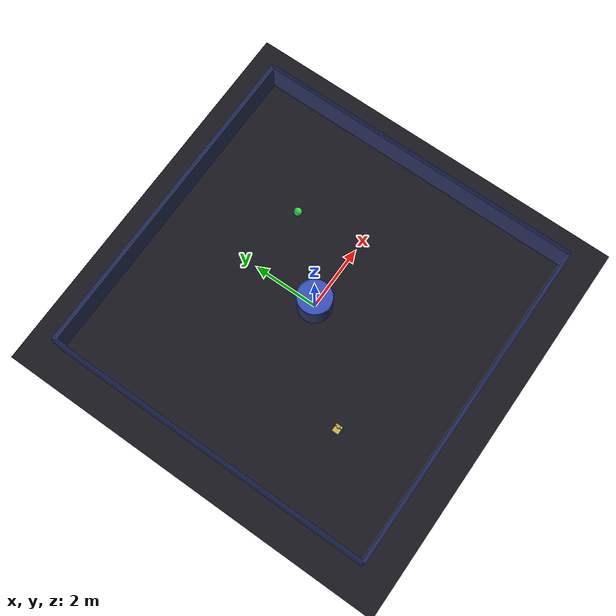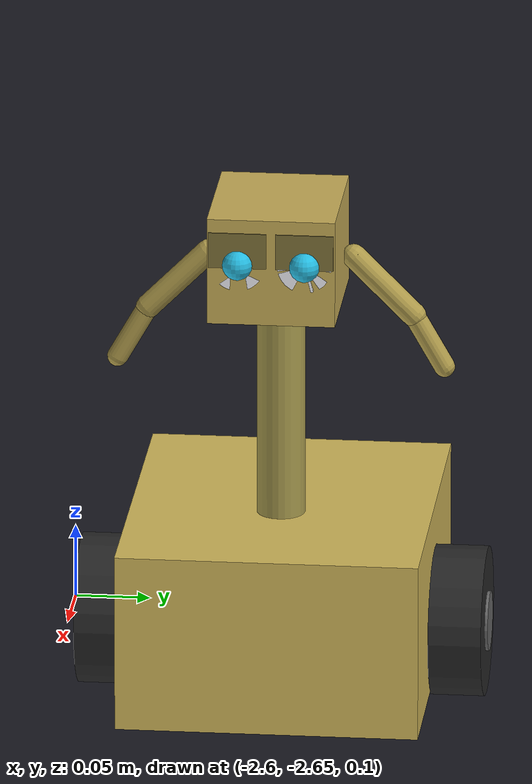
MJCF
<?xml version="1.0" encoding="utf-8"?>
<mujoco model="CARL Wall-E">

  <option timestep="0.005" gravity="0 0 -9.81" iterations="50" solver="Newton"
          integrator="RK4"/>

  <compiler angle="radian" coordinate="local" inertiafromgeom="true"/>

  <default>
    <geom contype="1" conaffinity="1" condim="3"
          friction="0.8 0.005 0.0001"
          solimp="0.99 0.999 0.001" solref="0.02 1"/>
    <joint damping="0.05" frictionloss="0.002"/>
  </default>

  <asset>
    <!-- Colours of CARL's soul -->
    <material name="floor_mat"     rgba="0.10 0.10 0.13 1.0" reflectance="0.12"/>
    <material name="wall_mat"      rgba="0.15 0.18 0.35 1.0" specular="0.3"/>
    <material name="wall_glow"     rgba="0.30 0.45 1.00 0.7" emission="0.5"/>

    <!-- Body materials -->
    <material name="chassis_mat"   rgba="0.82 0.72 0.35 1.0" specular="0.4"/>
    <material name="tread_mat"     rgba="0.15 0.15 0.15 1.0" specular="0.05"/>
    <material name="tread_hub_mat" rgba="0.40 0.40 0.40 1.0" specular="0.3"/>
    <material name="neck_mat"      rgba="0.65 0.60 0.30 1.0" specular="0.2"/>
    <material name="head_mat"      rgba="0.78 0.68 0.34 1.0" specular="0.5"/>
    <material name="eye_white_mat" rgba="0.95 0.95 0.98 1.0" specular="0.6"/>
    <material name="eye_iris_mat"  rgba="0.15 0.75 0.90 1.0" emission="0.9"/>
    <material name="eyelid_mat"    rgba="0.50 0.45 0.22 1.0" specular="0.2"/>
    <material name="arm_mat"       rgba="0.70 0.62 0.30 1.0" specular="0.3"/>
    <material name="claw_mat"      rgba="0.55 0.50 0.25 1.0" specular="0.2"/>
    <material name="heart_mat"     rgba="1.00 0.40 0.30 1.0" emission="0.8"/>
    <material name="food_mat"      rgba="0.20 0.90 0.30 1.0" emission="0.5"/>

    <!-- Sky -->
    <texture name="sky" type="skybox" builtin="gradient"
             rgb1="0.05 0.05 0.12" rgb2="0.02 0.02 0.06"
             width="512" height="512"/>
  </asset>

  <visual>
    <headlight ambient="0.35 0.35 0.45" diffuse="0.6 0.6 0.7" specular="0.1 0.1 0.1"/>
    <rgba haze="0.02 0.02 0.04 1"/>
    <quality shadowsize="2048"/>
  </visual>

  <worldbody>
    <!-- Floor -->
    <geom name="floor" type="plane" size="6 6 0.1"
          pos="0 0 0" material="floor_mat" condim="3"/>

    <!-- Ambient light -->
    <light name="sun" pos="0 0 8.0" dir="0 0 -1"
           diffuse="0.5 0.5 0.6" specular="0.2 0.2 0.2" castshadow="true"/>

    <!-- ARENA WALLS — Simple open space for learning                     -->
    <geom name="wall_s" type="box" size="5.0 0.05 0.50" pos="0  -5.0  0.50" material="wall_mat"/>
    <geom name="wall_n" type="box" size="5.0 0.05 0.50" pos="0   5.0  0.50" material="wall_mat"/>
    <geom name="wall_w" type="box" size="0.05 5.0 0.50" pos="-5.0  0  0.50" material="wall_mat"/>
    <geom name="wall_e" type="box" size="0.05 5.0 0.50" pos=" 5.0  0  0.50" material="wall_mat"/>

    <!-- Wall glow caps -->
    <geom name="wg_s" type="box" size="5.0 0.01 0.004" pos="0  -5.0  1.004" material="wall_glow" contype="0" conaffinity="0"/>
    <geom name="wg_n" type="box" size="5.0 0.01 0.004" pos="0   5.0  1.004" material="wall_glow" contype="0" conaffinity="0"/>
    <geom name="wg_w" type="box" size="0.01 5.0 0.004" pos="-5.0  0  1.004" material="wall_glow" contype="0" conaffinity="0"/>
    <geom name="wg_e" type="box" size="0.01 5.0 0.004" pos=" 5.0  0  1.004" material="wall_glow" contype="0" conaffinity="0"/>

    <!-- Centre obstacle -->
    <geom name="obstacle" type="cylinder" size="0.5 0.45" pos="0 0 0.45"
          material="wall_mat"/>
    <geom name="obstacle_glow" type="cylinder" size="0.52 0.004" pos="0 0 0.904"
          material="wall_glow" contype="0" conaffinity="0"/>

    <!-- Food pellet (respawned dynamically) -->
    <geom name="food" type="sphere" size="0.12" pos="2.0 2.0 0.12"
          material="food_mat" contype="0" conaffinity="0"/>

    <!-- CARL — The Living Machine                                         -->
    <!--  Hierarchy:                                                        -->
    <!--    base (freejoint)                                                -->
    <!--      ├── chassis (box)                                             -->
    <!--      ├── left_tread (hinge)                                        -->
    <!--      ├── right_tread (hinge)                                       -->
    <!--      ├── heart_light (sphere, decorative)                          -->
    <!--      └── neck_column (slide: up/down)                              -->
    <!--            └── head_pivot (hinge: tilt pitch)                      -->
    <!--                  └── head_yaw (hinge: pan)                         -->
    <!--                        └── head_shell (box)                        -->
    <!--                              ├── left_eye_socket                   -->
    <!--                              │     ├── eye_white + iris            -->
    <!--                              │     └── eyelid (hinge)              -->
    <!--                              ├── right_eye_socket                  -->
    <!--                              │     ├── eye_white + iris            -->
    <!--                              │     └── eyelid (hinge)              -->
    <!--                              ├── left_arm (hinge: shoulder)        -->
    <!--                              │     └── forearm (hinge: elbow)      -->
    <!--                              │           └── claw                  -->
    <!--                              └── right_arm (hinge: shoulder)       -->
    <!--                                    └── forearm (hinge: elbow)      -->
    <!--                                          └── claw                  -->

    <body name="carl_base" pos="-2.5 -2.5 0.15">
      <freejoint name="carl_root"/>

      <!-- ── CHASSIS ───────────────────────────────────────────────── -->
      <!-- Wide, low box. Wall-E's compactor body shape.               -->
      <geom name="chassis" type="box" size="0.12 0.10 0.06"
            material="chassis_mat" mass="1.5"
            friction="0.2 0.005 0.0001"/>
      <inertial pos="0 0 -0.01" mass="1.5"
                fullinertia="0.004 0.005 0.006 0 0 0"/>

      <!-- Heart light: glows with emotional intensity -->
      <geom name="heart_light" type="sphere" size="0.02"
            pos="0.10 0 0.02" material="heart_mat"
            contype="0" conaffinity="0" mass="0"/>

      <!-- ── LEFT TREAD ────────────────────────────────────────────── -->
      <body name="left_tread_body" pos="0 0.11 -0.02">
        <joint name="left_tread_j" type="hinge" axis="0 1 0"
               damping="0.02" frictionloss="0.005"/>
        <!-- Simplified tread as wide cylinder -->
        <geom name="left_tread" type="cylinder" size="0.05 0.025"
              euler="1.5708 0 0" material="tread_mat" mass="0.3"
              friction="1.8 0.005 0.0001"/>
        <!-- Hub cap -->
        <geom name="left_hub" type="cylinder" size="0.02 0.001"
              pos="0 0.026 0" euler="1.5708 0 0" material="tread_hub_mat"
              contype="0" conaffinity="0" mass="0"/>
      </body>

      <!-- ── RIGHT TREAD ───────────────────────────────────────────── -->
      <body name="right_tread_body" pos="0 -0.11 -0.02">
        <joint name="right_tread_j" type="hinge" axis="0 1 0"
               damping="0.02" frictionloss="0.005"/>
        <geom name="right_tread" type="cylinder" size="0.05 0.025"
              euler="1.5708 0 0" material="tread_mat" mass="0.3"
              friction="1.8 0.005 0.0001"/>
        <geom name="right_hub" type="cylinder" size="0.02 0.001"
              pos="0 -0.026 0" euler="1.5708 0 0" material="tread_hub_mat"
              contype="0" conaffinity="0" mass="0"/>
      </body>

      <!-- ── NECK COLUMN ───────────────────────────────────────────── -->
      <!-- Telescoping neck: rises with curiosity, compresses with fear -->
      <body name="neck_base" pos="0.02 0 0.06">
        <joint name="neck_lift" type="slide" axis="0 0 1"
               range="0.0 0.20" damping="12.0" stiffness="25.0"
               springref="0.10" armature="0.01"/>
        <!-- Neck tube visual -->
        <geom name="neck_tube" type="cylinder" size="0.016 0.07"
              pos="0 0 0.07" material="neck_mat" mass="0.05"
              contype="0" conaffinity="0"/>

        <!-- ── HEAD TILT (pitch) ─────────────────────────────────── -->
        <!-- Nod: tilts forward when curious, droops down when sad   -->
        <body name="head_tilt_body" pos="0 0 0.16">
          <joint name="head_tilt" type="hinge" axis="0 1 0"
                 range="-0.524 0.349" damping="0.15" stiffness="0.5"
                 springref="0.0" armature="0.01"/>
          <inertial pos="0 0 0" mass="0.01" fullinertia="0.00001 0.00001 0.00001 0 0 0"/>

          <!-- ── HEAD PAN (yaw) ────────────────────────────────── -->
          <!-- Look left/right: turns toward stimuli/threats        -->
          <body name="head_pan_body" pos="0 0 0.01">
            <joint name="head_pan" type="hinge" axis="0 0 1"
                   range="-1.047 1.047" damping="0.12" stiffness="0.0"
                   springref="0.0" armature="0.01"/>
            <inertial pos="0 0 0" mass="0.01" fullinertia="0.00001 0.00001 0.00001 0 0 0"/>

            <!-- ── HEAD SHELL ──────────────────────────────────── -->
            <!-- The face. Wall-E's binocular-shaped head.         -->
            <body name="head" pos="0.02 0 0.02">
              <geom name="head_shell" type="box" size="0.048 0.042 0.036"
                    material="head_mat" mass="0.20"
                    contype="0" conaffinity="0"/>
              <inertial pos="0 0 0" mass="0.20"
                        fullinertia="0.0002 0.0002 0.0002 0 0 0"/>

              <!-- ── LEFT EYE ────────────────────────────────── -->
              <body name="left_eye_socket" pos="0.045 0.022 0.005">
                <!-- Eye white (always visible) -->
                <geom name="eye_white_L" type="cylinder" size="0.018 0.003"
                      euler="0 1.5708 0" material="eye_white_mat"
                      contype="0" conaffinity="0" mass="0"/>
                <!-- Iris/pupil (glowing cyan) -->
                <geom name="eye_iris_L" type="sphere" size="0.010"
                      pos="0.003 0 0" material="eye_iris_mat"
                      contype="0" conaffinity="0" mass="0"/>

                <!-- Eyelid: rotates down to close the eye -->
                <body name="left_eyelid_body" pos="0 0 0.015">
                  <joint name="left_eyelid" type="hinge" axis="0 1 0"
                         range="0.0 1.3" damping="0.05" stiffness="0.3"
                         springref="0.0" armature="0.01"/>
                  <inertial pos="0 0 0" mass="0.005" fullinertia="0.000001 0.000001 0.000001 0 0 0"/>
                  <geom name="left_eyelid" type="box" size="0.004 0.019 0.012"
                        pos="0 0 -0.005" material="eyelid_mat"
                        contype="0" conaffinity="0" mass="0.005"/>
                </body>
              </body>

              <!-- ── RIGHT EYE ───────────────────────────────── -->
              <body name="right_eye_socket" pos="0.045 -0.022 0.005">
                <geom name="eye_white_R" type="cylinder" size="0.018 0.003"
                      euler="0 1.5708 0" material="eye_white_mat"
                      contype="0" conaffinity="0" mass="0"/>
                <geom name="eye_iris_R" type="sphere" size="0.010"
                      pos="0.003 0 0" material="eye_iris_mat"
                      contype="0" conaffinity="0" mass="0"/>

                <body name="right_eyelid_body" pos="0 0 0.015">
                  <joint name="right_eyelid" type="hinge" axis="0 1 0"
                         range="0.0 1.3" damping="0.05" stiffness="0.3"
                         springref="0.0" armature="0.01"/>
                  <inertial pos="0 0 0" mass="0.005" fullinertia="0.000001 0.000001 0.000001 0 0 0"/>
                  <geom name="right_eyelid" type="box" size="0.004 0.019 0.012"
                        pos="0 0 -0.005" material="eyelid_mat"
                        contype="0" conaffinity="0" mass="0.005"/>
                </body>
              </body>

              <!-- ── LEFT ARM ────────────────────────────────── -->
              <!-- Small stubby arms, Wall-E style                -->
              <body name="left_arm_shoulder" pos="-0.02 0.048 -0.01">
                <inertial pos="0 0 0" mass="0.03" fullinertia="0.00001 0.00001 0.00001 0 0 0"/>
                <joint name="left_shoulder" type="hinge" axis="0 1 0"
                       range="-1.57 1.57" damping="0.08" stiffness="0.2"
                       springref="0.3" armature="0.01"/>
                <!-- Upper arm -->
                <geom name="left_upper_arm" type="capsule"
                      fromto="0 0 0  0 0.04 -0.04" size="0.008"
                      material="arm_mat" mass="0.03" contype="0" conaffinity="0"/>

                <!-- Forearm + elbow -->
                <body name="left_forearm_body" pos="0 0.04 -0.04">
                  <inertial pos="0 0 0" mass="0.03" fullinertia="0.00001 0.00001 0.00001 0 0 0"/>
                  <joint name="left_elbow" type="hinge" axis="0 1 0"
                         range="-2.0 0.5" damping="0.5" stiffness="0.1"
                         springref="-0.5" armature="0.01"/>
                  <geom name="left_forearm" type="capsule"
                        fromto="0 0 0  0 0.02 -0.035" size="0.007"
                        material="arm_mat" mass="0.03" contype="0" conaffinity="0"/>
                </body>
              </body>

              <!-- ── RIGHT ARM ───────────────────────────────── -->
              <body name="right_arm_shoulder" pos="-0.02 -0.048 -0.01">
                <inertial pos="0 0 0" mass="0.03" fullinertia="0.00001 0.00001 0.00001 0 0 0"/>
                <joint name="right_shoulder" type="hinge" axis="0 1 0"
                       range="-1.57 1.57" damping="0.08" stiffness="0.2"
                       springref="0.3" armature="0.01"/>
                <geom name="right_upper_arm" type="capsule"
                      fromto="0 0 0  0 -0.04 -0.04" size="0.008"
                      material="arm_mat" mass="0.03" contype="0" conaffinity="0"/>

                <body name="right_forearm_body" pos="0 -0.04 -0.04">
                  <inertial pos="0 0 0" mass="0.03" fullinertia="0.00001 0.00001 0.00001 0 0 0"/>
                  <joint name="right_elbow" type="hinge" axis="0 1 0"
                         range="-2.0 0.5" damping="0.5" stiffness="0.1"
                         springref="-0.5" armature="0.01"/>
                  <geom name="right_forearm" type="capsule"
                        fromto="0 0 0  0 -0.02 -0.035" size="0.007"
                        material="arm_mat" mass="0.03" contype="0" conaffinity="0"/>
                </body>
              </body>

            </body> <!-- head -->
          </body> <!-- head_pan_body -->
        </body> <!-- head_tilt_body -->
      </body> <!-- neck_base -->
    </body> <!-- carl_base -->

  </worldbody>

  <!-- ACTUATORS — How the mind speaks through the body                    -->
  <actuator>
    <!-- LOCOMOTION: differential drive (tank steering) -->
    <velocity name="left_tread"   joint="left_tread_j"  kv="2.0" forcerange="-5.0 5.0" gear="5"/>
    <velocity name="right_tread"  joint="right_tread_j" kv="2.0" forcerange="-5.0 5.0" gear="5"/>

    <!-- EXPRESSION: neck and head -->
    <position name="neck_height"  joint="neck_lift"     kp="2.0" gear="1"/>
    <position name="head_pitch"   joint="head_tilt"     kp="0.5" gear="1"/>
    <position name="head_yaw"     joint="head_pan"      kp="0.5" gear="1"/>

    <!-- EXPRESSION: eyelids (0=open, 1.3=closed) -->
    <position name="eyelid_L"     joint="left_eyelid"   kp="0.01" gear="1"/>
    <position name="eyelid_R"     joint="right_eyelid"  kp="0.01" gear="1"/>

    <!-- EXPRESSION: arms -->
    <position name="shoulder_L"   joint="left_shoulder"  kp="0.05" gear="1"/>
    <position name="elbow_L"      joint="left_elbow"     kp="0.02" gear="1"/>
    <position name="shoulder_R"   joint="right_shoulder"  kp="0.05" gear="1"/>
    <position name="elbow_R"      joint="right_elbow"     kp="0.02" gear="1"/>
  </actuator>

</mujoco>
